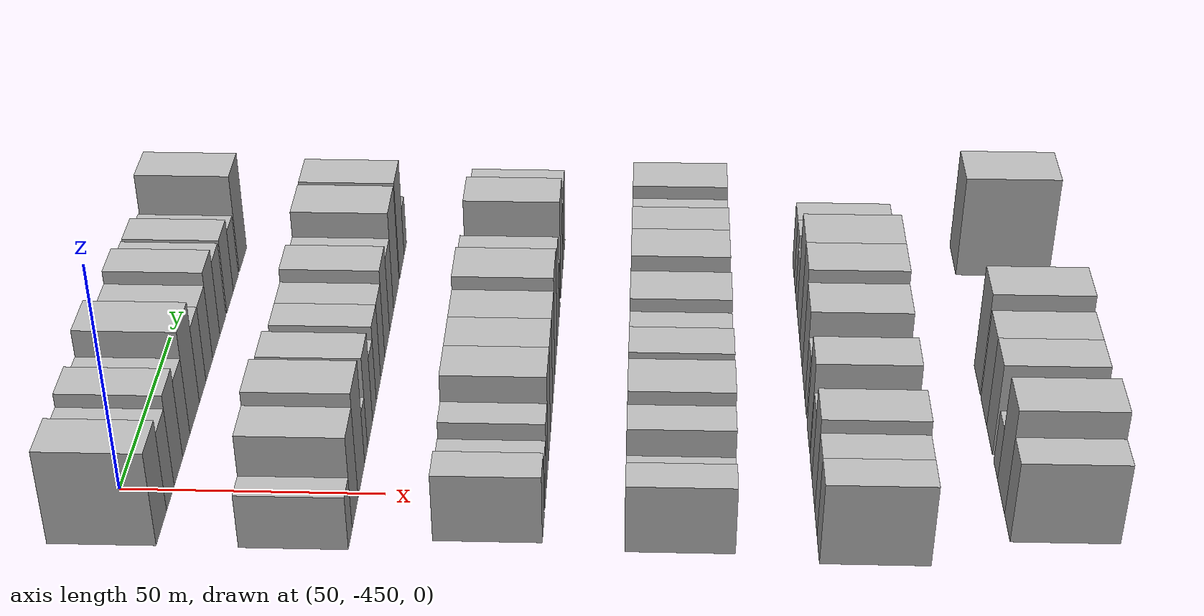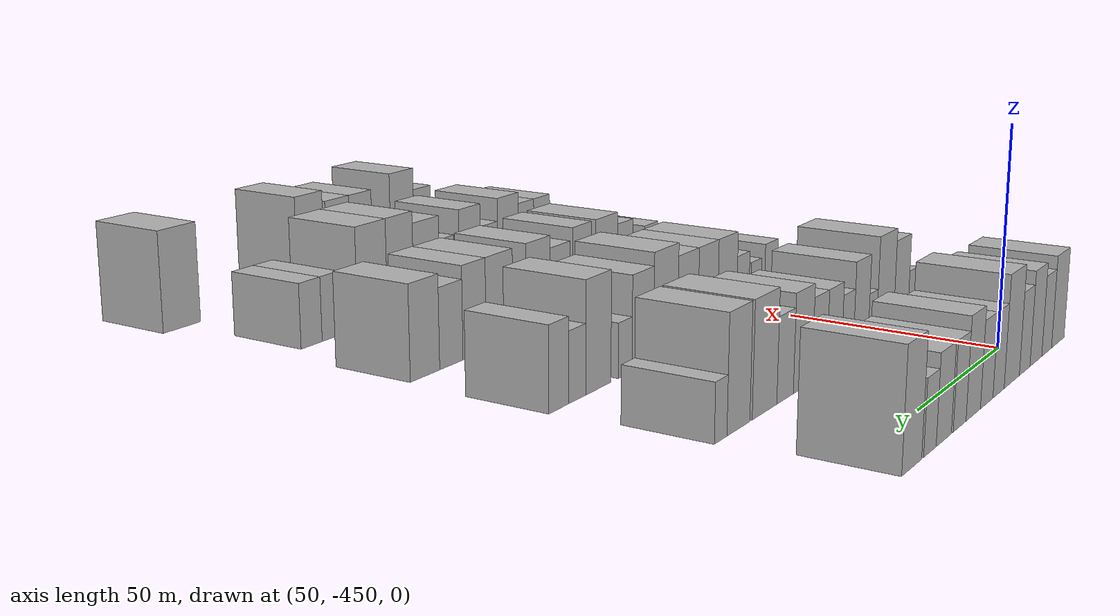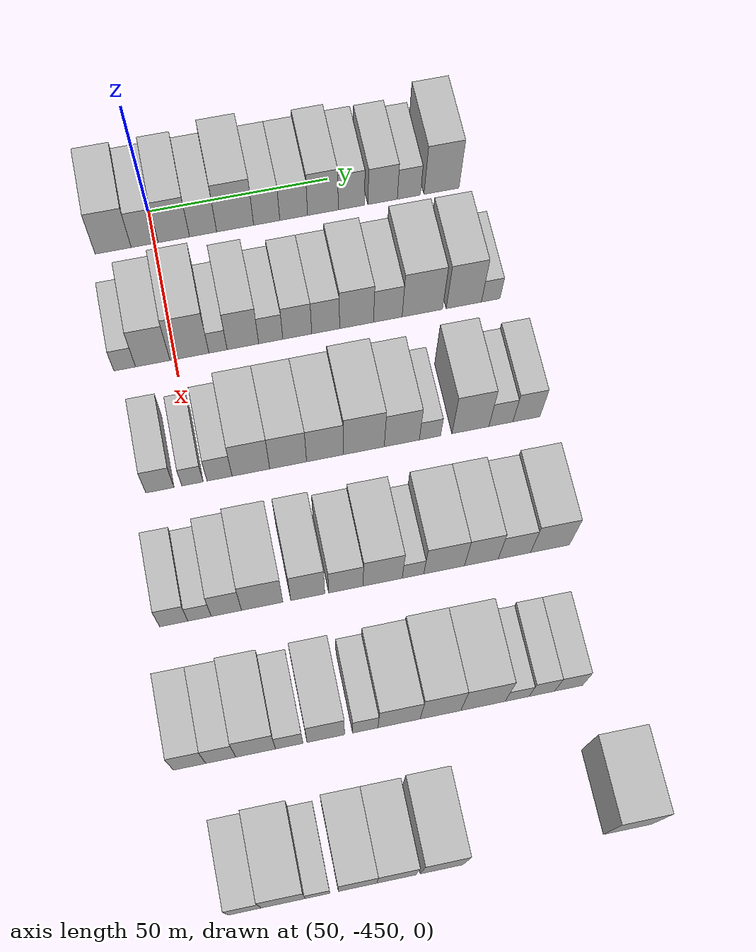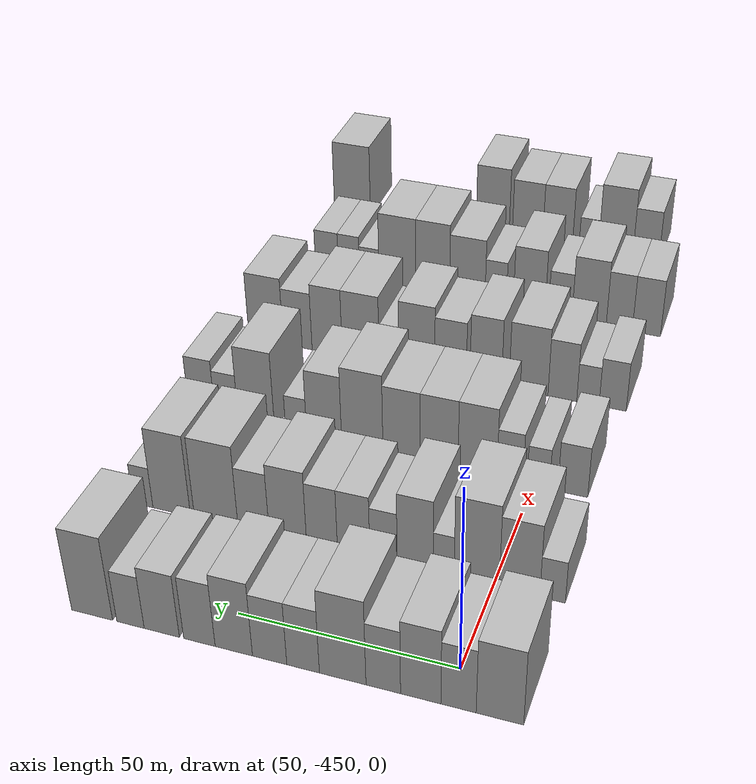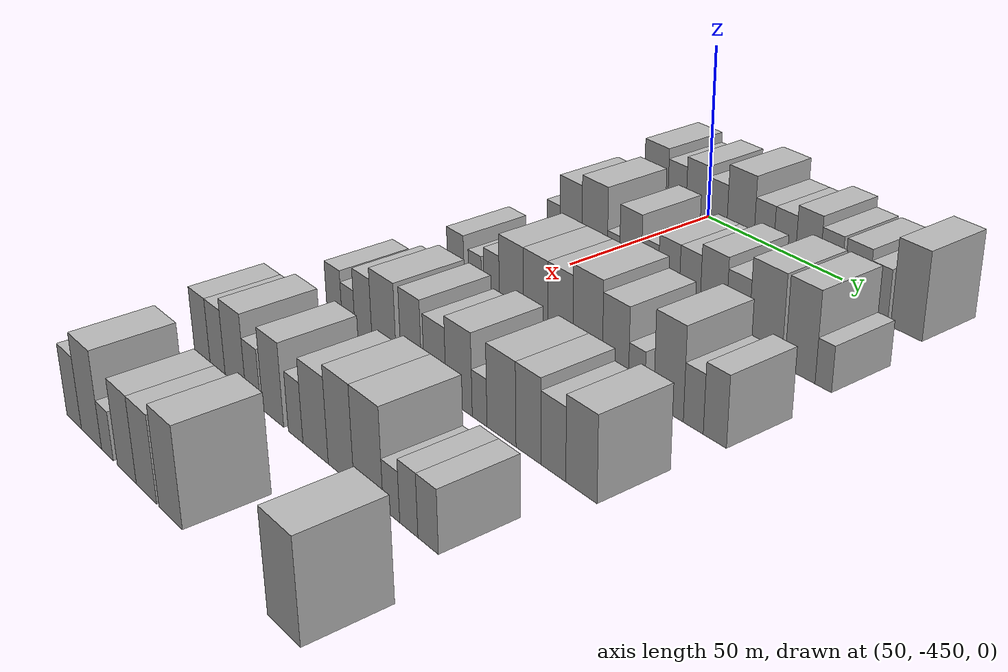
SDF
<sdf version="1.6">
 <world name="default">
  <model name="building_13">
   <static>1</static>
   <pose>50.0000 -461.1967 0 0.000000 0.000000 0.000000</pose>
   <link name="link">
    <pose>0 0 10.50 0 0 0</pose>
    <collision name="collision"><geometry><box><size>20.0000 9.8566 21.0000</size></box></geometry></collision>
    <visual name="visual">
     <cast_shadows>0</cast_shadows>
     <geometry><box><size>20.0000 9.8566 21.0000</size></box></geometry>
     <material>
      <script>
       <uri>model://HANNAS_wall/materials/scripts</uri>
       <uri>model://HANNAS_wall/materials/textures</uri>
       <name>vrc/HANNAS_wall</name>
      </script>
     </material>
    </visual>
   </link>
  </model>
  <model name="building_14">
   <static>1</static>
   <pose>50.0000 -452.5612 0 0.000000 0.000000 0.000000</pose>
   <link name="link">
    <pose>0 0 9.00 0 0 0</pose>
    <collision name="collision"><geometry><box><size>20.0000 7.4144 18.0000</size></box></geometry></collision>
    <visual name="visual">
     <cast_shadows>0</cast_shadows>
     <geometry><box><size>20.0000 7.4144 18.0000</size></box></geometry>
     <material>
      <script>
       <uri>model://HANNAS_wall/materials/scripts</uri>
       <uri>model://HANNAS_wall/materials/textures</uri>
       <name>vrc/HANNAS_wall</name>
      </script>
     </material>
    </visual>
   </link>
  </model>
  <model name="building_15">
   <static>1</static>
   <pose>50.0000 -444.5589 0 0.000000 0.000000 0.000000</pose>
   <link name="link">
    <pose>0 0 10.50 0 0 0</pose>
    <collision name="collision"><geometry><box><size>20.0000 8.5902 21.0000</size></box></geometry></collision>
    <visual name="visual">
     <cast_shadows>0</cast_shadows>
     <geometry><box><size>20.0000 8.5902 21.0000</size></box></geometry>
     <material>
      <script>
       <uri>model://HANNAS_wall/materials/scripts</uri>
       <uri>model://HANNAS_wall/materials/textures</uri>
       <name>vrc/HANNAS_wall</name>
      </script>
     </material>
    </visual>
   </link>
  </model>
  <model name="building_16">
   <static>1</static>
   <pose>50.0000 -436.5324 0 0.000000 0.000000 0.000000</pose>
   <link name="link">
    <pose>0 0 9.00 0 0 0</pose>
    <collision name="collision"><geometry><box><size>20.0000 7.4628 18.0000</size></box></geometry></collision>
    <visual name="visual">
     <cast_shadows>0</cast_shadows>
     <geometry><box><size>20.0000 7.4628 18.0000</size></box></geometry>
     <material>
      <script>
       <uri>model://HANNAS_wall/materials/scripts</uri>
       <uri>model://HANNAS_wall/materials/textures</uri>
       <name>vrc/HANNAS_wall</name>
      </script>
     </material>
    </visual>
   </link>
  </model>
  <model name="building_17">
   <static>1</static>
   <pose>50.0000 -427.6935 0 0.000000 0.000000 0.000000</pose>
   <link name="link">
    <pose>0 0 12.00 0 0 0</pose>
    <collision name="collision"><geometry><box><size>20.0000 10.2148 24.0000</size></box></geometry></collision>
    <visual name="visual">
     <cast_shadows>0</cast_shadows>
     <geometry><box><size>20.0000 10.2148 24.0000</size></box></geometry>
     <material>
      <script>
       <uri>model://HANNAS_wall/materials/scripts</uri>
       <uri>model://HANNAS_wall/materials/textures</uri>
       <name>vrc/HANNAS_wall</name>
      </script>
     </material>
    </visual>
   </link>
  </model>
  <model name="building_18">
   <static>1</static>
   <pose>50.0000 -418.9627 0 0.000000 0.000000 0.000000</pose>
   <link name="link">
    <pose>0 0 9.00 0 0 0</pose>
    <collision name="collision"><geometry><box><size>20.0000 7.2468 18.0000</size></box></geometry></collision>
    <visual name="visual">
     <cast_shadows>0</cast_shadows>
     <geometry><box><size>20.0000 7.2468 18.0000</size></box></geometry>
     <material>
      <script>
       <uri>model://HANNAS_wall/materials/scripts</uri>
       <uri>model://HANNAS_wall/materials/textures</uri>
       <name>vrc/HANNAS_wall</name>
      </script>
     </material>
    </visual>
   </link>
  </model>
  <model name="building_19">
   <static>1</static>
   <pose>50.0000 -411.4793 0 0.000000 0.000000 0.000000</pose>
   <link name="link">
    <pose>0 0 9.00 0 0 0</pose>
    <collision name="collision"><geometry><box><size>20.0000 7.7200 18.0000</size></box></geometry></collision>
    <visual name="visual">
     <cast_shadows>0</cast_shadows>
     <geometry><box><size>20.0000 7.7200 18.0000</size></box></geometry>
     <material>
      <script>
       <uri>model://HANNAS_wall/materials/scripts</uri>
       <uri>model://HANNAS_wall/materials/textures</uri>
       <name>vrc/HANNAS_wall</name>
      </script>
     </material>
    </visual>
   </link>
  </model>
  <model name="building_20">
   <static>1</static>
   <pose>50.0000 -403.3592 0 0.000000 0.000000 0.000000</pose>
   <link name="link">
    <pose>0 0 10.50 0 0 0</pose>
    <collision name="collision"><geometry><box><size>20.0000 8.5203 21.0000</size></box></geometry></collision>
    <visual name="visual">
     <cast_shadows>0</cast_shadows>
     <geometry><box><size>20.0000 8.5203 21.0000</size></box></geometry>
     <material>
      <script>
       <uri>model://HANNAS_wall/materials/scripts</uri>
       <uri>model://HANNAS_wall/materials/textures</uri>
       <name>vrc/HANNAS_wall</name>
      </script>
     </material>
    </visual>
   </link>
  </model>
  <model name="building_21">
   <static>1</static>
   <pose>50.0000 -395.4574 0 0.000000 0.000000 0.000000</pose>
   <link name="link">
    <pose>0 0 9.00 0 0 0</pose>
    <collision name="collision"><geometry><box><size>20.0000 7.2833 18.0000</size></box></geometry></collision>
    <visual name="visual">
     <cast_shadows>0</cast_shadows>
     <geometry><box><size>20.0000 7.2833 18.0000</size></box></geometry>
     <material>
      <script>
       <uri>model://HANNAS_wall/materials/scripts</uri>
       <uri>model://HANNAS_wall/materials/textures</uri>
       <name>vrc/HANNAS_wall</name>
      </script>
     </material>
    </visual>
   </link>
  </model>
  <model name="building_22">
   <static>1</static>
   <pose>50.0000 -386.6926 0 0.000000 0.000000 0.000000</pose>
   <link name="link">
    <pose>0 0 9.00 0 0 0</pose>
    <collision name="collision"><geometry><box><size>20.0000 8.2462 18.0000</size></box></geometry></collision>
    <visual name="visual">
     <cast_shadows>0</cast_shadows>
     <geometry><box><size>20.0000 8.2462 18.0000</size></box></geometry>
     <material>
      <script>
       <uri>model://HANNAS_wall/materials/scripts</uri>
       <uri>model://HANNAS_wall/materials/textures</uri>
       <name>vrc/HANNAS_wall</name>
      </script>
     </material>
    </visual>
   </link>
  </model>
  <model name="building_23">
   <static>1</static>
   <pose>50.0000 -379.3181 0 0.000000 0.000000 0.000000</pose>
   <link name="link">
    <pose>0 0 7.50 0 0 0</pose>
    <collision name="collision"><geometry><box><size>20.0000 6.5028 15.0000</size></box></geometry></collision>
    <visual name="visual">
     <cast_shadows>0</cast_shadows>
     <geometry><box><size>20.0000 6.5028 15.0000</size></box></geometry>
     <material>
      <script>
       <uri>model://HANNAS_wall/materials/scripts</uri>
       <uri>model://HANNAS_wall/materials/textures</uri>
       <name>vrc/HANNAS_wall</name>
      </script>
     </material>
    </visual>
   </link>
  </model>
  <model name="building_24">
   <static>1</static>
   <pose>50.0000 -370.1456 0 0.000000 0.000000 0.000000</pose>
   <link name="link">
    <pose>0 0 12.00 0 0 0</pose>
    <collision name="collision"><geometry><box><size>20.0000 9.8422 24.0000</size></box></geometry></collision>
    <visual name="visual">
     <cast_shadows>0</cast_shadows>
     <geometry><box><size>20.0000 9.8422 24.0000</size></box></geometry>
     <material>
      <script>
       <uri>model://HANNAS_wall/materials/scripts</uri>
       <uri>model://HANNAS_wall/materials/textures</uri>
       <name>vrc/HANNAS_wall</name>
      </script>
     </material>
    </visual>
   </link>
  </model>
  <model name="building_138">
   <static>1</static>
   <pose>85.0000 -463.3644 0 0.000000 0.000000 0.000000</pose>
   <link name="link">
    <pose>0 0 6.00 0 0 0</pose>
    <collision name="collision"><geometry><box><size>20.0000 5.7220 12.0000</size></box></geometry></collision>
    <visual name="visual">
     <cast_shadows>0</cast_shadows>
     <geometry><box><size>20.0000 5.7220 12.0000</size></box></geometry>
     <material>
      <script>
       <uri>model://HANNAS_wall/materials/scripts</uri>
       <uri>model://HANNAS_wall/materials/textures</uri>
       <name>vrc/HANNAS_wall</name>
      </script>
     </material>
    </visual>
   </link>
  </model>
  <model name="building_139">
   <static>1</static>
   <pose>85.0000 -455.9197 0 0.000000 0.000000 0.000000</pose>
   <link name="link">
    <pose>0 0 10.50 0 0 0</pose>
    <collision name="collision"><geometry><box><size>20.0000 9.1674 21.0000</size></box></geometry></collision>
    <visual name="visual">
     <cast_shadows>0</cast_shadows>
     <geometry><box><size>20.0000 9.1674 21.0000</size></box></geometry>
     <material>
      <script>
       <uri>model://HANNAS_wall/materials/scripts</uri>
       <uri>model://HANNAS_wall/materials/textures</uri>
       <name>vrc/HANNAS_wall</name>
      </script>
     </material>
    </visual>
   </link>
  </model>
  <model name="building_140">
   <static>1</static>
   <pose>85.0000 -446.1445 0 0.000000 0.000000 0.000000</pose>
   <link name="link">
    <pose>0 0 12.00 0 0 0</pose>
    <collision name="collision"><geometry><box><size>20.0000 10.3828 24.0000</size></box></geometry></collision>
    <visual name="visual">
     <cast_shadows>0</cast_shadows>
     <geometry><box><size>20.0000 10.3828 24.0000</size></box></geometry>
     <material>
      <script>
       <uri>model://HANNAS_wall/materials/scripts</uri>
       <uri>model://HANNAS_wall/materials/textures</uri>
       <name>vrc/HANNAS_wall</name>
      </script>
     </material>
    </visual>
   </link>
  </model>
  <model name="building_141">
   <static>1</static>
   <pose>85.0000 -438.5213 0 0.000000 0.000000 0.000000</pose>
   <link name="link">
    <pose>0 0 6.00 0 0 0</pose>
    <collision name="collision"><geometry><box><size>20.0000 4.8637 12.0000</size></box></geometry></collision>
    <visual name="visual">
     <cast_shadows>0</cast_shadows>
     <geometry><box><size>20.0000 4.8637 12.0000</size></box></geometry>
     <material>
      <script>
       <uri>model://HANNAS_wall/materials/scripts</uri>
       <uri>model://HANNAS_wall/materials/textures</uri>
       <name>vrc/HANNAS_wall</name>
      </script>
     </material>
    </visual>
   </link>
  </model>
  <model name="building_142">
   <static>1</static>
   <pose>85.0000 -431.8639 0 0.000000 0.000000 0.000000</pose>
   <link name="link">
    <pose>0 0 10.50 0 0 0</pose>
    <collision name="collision"><geometry><box><size>20.0000 8.4509 21.0000</size></box></geometry></collision>
    <visual name="visual">
     <cast_shadows>0</cast_shadows>
     <geometry><box><size>20.0000 8.4509 21.0000</size></box></geometry>
     <material>
      <script>
       <uri>model://HANNAS_wall/materials/scripts</uri>
       <uri>model://HANNAS_wall/materials/textures</uri>
       <name>vrc/HANNAS_wall</name>
      </script>
     </material>
    </visual>
   </link>
  </model>
  <model name="building_143">
   <static>1</static>
   <pose>85.0000 -424.4009 0 0.000000 0.000000 0.000000</pose>
   <link name="link">
    <pose>0 0 7.50 0 0 0</pose>
    <collision name="collision"><geometry><box><size>20.0000 6.4751 15.0000</size></box></geometry></collision>
    <visual name="visual">
     <cast_shadows>0</cast_shadows>
     <geometry><box><size>20.0000 6.4751 15.0000</size></box></geometry>
     <material>
      <script>
       <uri>model://HANNAS_wall/materials/scripts</uri>
       <uri>model://HANNAS_wall/materials/textures</uri>
       <name>vrc/HANNAS_wall</name>
      </script>
     </material>
    </visual>
   </link>
  </model>
  <model name="building_144">
   <static>1</static>
   <pose>85.0000 -417.2740 0 0.000000 0.000000 0.000000</pose>
   <link name="link">
    <pose>0 0 9.00 0 0 0</pose>
    <collision name="collision"><geometry><box><size>20.0000 7.7787 18.0000</size></box></geometry></collision>
    <visual name="visual">
     <cast_shadows>0</cast_shadows>
     <geometry><box><size>20.0000 7.7787 18.0000</size></box></geometry>
     <material>
      <script>
       <uri>model://HANNAS_wall/materials/scripts</uri>
       <uri>model://HANNAS_wall/materials/textures</uri>
       <name>vrc/HANNAS_wall</name>
      </script>
     </material>
    </visual>
   </link>
  </model>
  <model name="building_145">
   <static>1</static>
   <pose>85.0000 -409.6273 0 0.000000 0.000000 0.000000</pose>
   <link name="link">
    <pose>0 0 9.00 0 0 0</pose>
    <collision name="collision"><geometry><box><size>20.0000 7.5147 18.0000</size></box></geometry></collision>
    <visual name="visual">
     <cast_shadows>0</cast_shadows>
     <geometry><box><size>20.0000 7.5147 18.0000</size></box></geometry>
     <material>
      <script>
       <uri>model://HANNAS_wall/materials/scripts</uri>
       <uri>model://HANNAS_wall/materials/textures</uri>
       <name>vrc/HANNAS_wall</name>
      </script>
     </material>
    </visual>
   </link>
  </model>
  <model name="building_146">
   <static>1</static>
   <pose>85.0000 -401.2815 0 0.000000 0.000000 0.000000</pose>
   <link name="link">
    <pose>0 0 10.50 0 0 0</pose>
    <collision name="collision"><geometry><box><size>20.0000 9.1771 21.0000</size></box></geometry></collision>
    <visual name="visual">
     <cast_shadows>0</cast_shadows>
     <geometry><box><size>20.0000 9.1771 21.0000</size></box></geometry>
     <material>
      <script>
       <uri>model://HANNAS_wall/materials/scripts</uri>
       <uri>model://HANNAS_wall/materials/textures</uri>
       <name>vrc/HANNAS_wall</name>
      </script>
     </material>
    </visual>
   </link>
  </model>
  <model name="building_147">
   <static>1</static>
   <pose>85.0000 -392.8049 0 0.000000 0.000000 0.000000</pose>
   <link name="link">
    <pose>0 0 9.00 0 0 0</pose>
    <collision name="collision"><geometry><box><size>20.0000 7.7760 18.0000</size></box></geometry></collision>
    <visual name="visual">
     <cast_shadows>0</cast_shadows>
     <geometry><box><size>20.0000 7.7760 18.0000</size></box></geometry>
     <material>
      <script>
       <uri>model://HANNAS_wall/materials/scripts</uri>
       <uri>model://HANNAS_wall/materials/textures</uri>
       <name>vrc/HANNAS_wall</name>
      </script>
     </material>
    </visual>
   </link>
  </model>
  <model name="building_148">
   <static>1</static>
   <pose>85.0000 -383.4002 0 0.000000 0.000000 0.000000</pose>
   <link name="link">
    <pose>0 0 12.00 0 0 0</pose>
    <collision name="collision"><geometry><box><size>20.0000 11.0335 24.0000</size></box></geometry></collision>
    <visual name="visual">
     <cast_shadows>0</cast_shadows>
     <geometry><box><size>20.0000 11.0335 24.0000</size></box></geometry>
     <material>
      <script>
       <uri>model://HANNAS_wall/materials/scripts</uri>
       <uri>model://HANNAS_wall/materials/textures</uri>
       <name>vrc/HANNAS_wall</name>
      </script>
     </material>
    </visual>
   </link>
  </model>
  <model name="building_149">
   <static>1</static>
   <pose>85.0000 -372.0579 0 0.000000 0.000000 0.000000</pose>
   <link name="link">
    <pose>0 0 12.00 0 0 0</pose>
    <collision name="collision"><geometry><box><size>20.0000 9.6511 24.0000</size></box></geometry></collision>
    <visual name="visual">
     <cast_shadows>0</cast_shadows>
     <geometry><box><size>20.0000 9.6511 24.0000</size></box></geometry>
     <material>
      <script>
       <uri>model://HANNAS_wall/materials/scripts</uri>
       <uri>model://HANNAS_wall/materials/textures</uri>
       <name>vrc/HANNAS_wall</name>
      </script>
     </material>
    </visual>
   </link>
  </model>
  <model name="building_150">
   <static>1</static>
   <pose>85.0000 -364.6880 0 0.000000 0.000000 0.000000</pose>
   <link name="link">
    <pose>0 0 6.00 0 0 0</pose>
    <collision name="collision"><geometry><box><size>20.0000 5.0887 12.0000</size></box></geometry></collision>
    <visual name="visual">
     <cast_shadows>0</cast_shadows>
     <geometry><box><size>20.0000 5.0887 12.0000</size></box></geometry>
     <material>
      <script>
       <uri>model://HANNAS_wall/materials/scripts</uri>
       <uri>model://HANNAS_wall/materials/textures</uri>
       <name>vrc/HANNAS_wall</name>
      </script>
     </material>
    </visual>
   </link>
  </model>
  <model name="building_270">
   <static>1</static>
   <pose>120.0000 -459.6366 0 0.000000 0.000000 0.000000</pose>
   <link name="link">
    <pose>0 0 7.50 0 0 0</pose>
    <collision name="collision"><geometry><box><size>20.0000 7.2560 15.0000</size></box></geometry></collision>
    <visual name="visual">
     <cast_shadows>0</cast_shadows>
     <geometry><box><size>20.0000 7.2560 15.0000</size></box></geometry>
     <material>
      <script>
       <uri>model://HANNAS_wall/materials/scripts</uri>
       <uri>model://HANNAS_wall/materials/textures</uri>
       <name>vrc/HANNAS_wall</name>
      </script>
     </material>
    </visual>
   </link>
  </model>
  <model name="building_271">
   <static>1</static>
   <pose>120.0000 -451.2441 0 0.000000 0.000000 0.000000</pose>
   <link name="link">
    <pose>0 0 6.00 0 0 0</pose>
    <collision name="collision"><geometry><box><size>20.0000 5.5291 12.0000</size></box></geometry></collision>
    <visual name="visual">
     <cast_shadows>0</cast_shadows>
     <geometry><box><size>20.0000 5.5291 12.0000</size></box></geometry>
     <material>
      <script>
       <uri>model://HANNAS_wall/materials/scripts</uri>
       <uri>model://HANNAS_wall/materials/textures</uri>
       <name>vrc/HANNAS_wall</name>
      </script>
     </material>
    </visual>
   </link>
  </model>
  <model name="building_272">
   <static>1</static>
   <pose>120.0000 -444.2374 0 0.000000 0.000000 0.000000</pose>
   <link name="link">
    <pose>0 0 7.50 0 0 0</pose>
    <collision name="collision"><geometry><box><size>20.0000 6.4841 15.0000</size></box></geometry></collision>
    <visual name="visual">
     <cast_shadows>0</cast_shadows>
     <geometry><box><size>20.0000 6.4841 15.0000</size></box></geometry>
     <material>
      <script>
       <uri>model://HANNAS_wall/materials/scripts</uri>
       <uri>model://HANNAS_wall/materials/textures</uri>
       <name>vrc/HANNAS_wall</name>
      </script>
     </material>
    </visual>
   </link>
  </model>
  <model name="building_273">
   <static>1</static>
   <pose>120.0000 -436.1201 0 0.000000 0.000000 0.000000</pose>
   <link name="link">
    <pose>0 0 10.50 0 0 0</pose>
    <collision name="collision"><geometry><box><size>20.0000 9.7506 21.0000</size></box></geometry></collision>
    <visual name="visual">
     <cast_shadows>0</cast_shadows>
     <geometry><box><size>20.0000 9.7506 21.0000</size></box></geometry>
     <material>
      <script>
       <uri>model://HANNAS_wall/materials/scripts</uri>
       <uri>model://HANNAS_wall/materials/textures</uri>
       <name>vrc/HANNAS_wall</name>
      </script>
     </material>
    </visual>
   </link>
  </model>
  <model name="building_274">
   <static>1</static>
   <pose>120.0000 -426.4396 0 0.000000 0.000000 0.000000</pose>
   <link name="link">
    <pose>0 0 10.50 0 0 0</pose>
    <collision name="collision"><geometry><box><size>20.0000 9.6103 21.0000</size></box></geometry></collision>
    <visual name="visual">
     <cast_shadows>0</cast_shadows>
     <geometry><box><size>20.0000 9.6103 21.0000</size></box></geometry>
     <material>
      <script>
       <uri>model://HANNAS_wall/materials/scripts</uri>
       <uri>model://HANNAS_wall/materials/textures</uri>
       <name>vrc/HANNAS_wall</name>
      </script>
     </material>
    </visual>
   </link>
  </model>
  <model name="building_275">
   <static>1</static>
   <pose>120.0000 -416.8525 0 0.000000 0.000000 0.000000</pose>
   <link name="link">
    <pose>0 0 10.50 0 0 0</pose>
    <collision name="collision"><geometry><box><size>20.0000 9.5639 21.0000</size></box></geometry></collision>
    <visual name="visual">
     <cast_shadows>0</cast_shadows>
     <geometry><box><size>20.0000 9.5639 21.0000</size></box></geometry>
     <material>
      <script>
       <uri>model://HANNAS_wall/materials/scripts</uri>
       <uri>model://HANNAS_wall/materials/textures</uri>
       <name>vrc/HANNAS_wall</name>
      </script>
     </material>
    </visual>
   </link>
  </model>
  <model name="building_276">
   <static>1</static>
   <pose>120.0000 -406.6873 0 0.000000 0.000000 0.000000</pose>
   <link name="link">
    <pose>0 0 12.00 0 0 0</pose>
    <collision name="collision"><geometry><box><size>20.0000 10.7666 24.0000</size></box></geometry></collision>
    <visual name="visual">
     <cast_shadows>0</cast_shadows>
     <geometry><box><size>20.0000 10.7666 24.0000</size></box></geometry>
     <material>
      <script>
       <uri>model://HANNAS_wall/materials/scripts</uri>
       <uri>model://HANNAS_wall/materials/textures</uri>
       <name>vrc/HANNAS_wall</name>
      </script>
     </material>
    </visual>
   </link>
  </model>
  <model name="building_277">
   <static>1</static>
   <pose>120.0000 -396.6855 0 0.000000 0.000000 0.000000</pose>
   <link name="link">
    <pose>0 0 10.50 0 0 0</pose>
    <collision name="collision"><geometry><box><size>20.0000 9.2370 21.0000</size></box></geometry></collision>
    <visual name="visual">
     <cast_shadows>0</cast_shadows>
     <geometry><box><size>20.0000 9.2370 21.0000</size></box></geometry>
     <material>
      <script>
       <uri>model://HANNAS_wall/materials/scripts</uri>
       <uri>model://HANNAS_wall/materials/textures</uri>
       <name>vrc/HANNAS_wall</name>
      </script>
     </material>
    </visual>
   </link>
  </model>
  <model name="building_278">
   <static>1</static>
   <pose>120.0000 -389.2551 0 0.000000 0.000000 0.000000</pose>
   <link name="link">
    <pose>0 0 6.00 0 0 0</pose>
    <collision name="collision"><geometry><box><size>20.0000 5.6236 12.0000</size></box></geometry></collision>
    <visual name="visual">
     <cast_shadows>0</cast_shadows>
     <geometry><box><size>20.0000 5.6236 12.0000</size></box></geometry>
     <material>
      <script>
       <uri>model://HANNAS_wall/materials/scripts</uri>
       <uri>model://HANNAS_wall/materials/textures</uri>
       <name>vrc/HANNAS_wall</name>
      </script>
     </material>
    </visual>
   </link>
  </model>
  <model name="building_279">
   <static>1</static>
   <pose>120.0000 -378.5336 0 0.000000 0.000000 0.000000</pose>
   <link name="link">
    <pose>0 0 12.00 0 0 0</pose>
    <collision name="collision"><geometry><box><size>20.0000 9.8194 24.0000</size></box></geometry></collision>
    <visual name="visual">
     <cast_shadows>0</cast_shadows>
     <geometry><box><size>20.0000 9.8194 24.0000</size></box></geometry>
     <material>
      <script>
       <uri>model://HANNAS_wall/materials/scripts</uri>
       <uri>model://HANNAS_wall/materials/textures</uri>
       <name>vrc/HANNAS_wall</name>
      </script>
     </material>
    </visual>
   </link>
  </model>
  <model name="building_280">
   <static>1</static>
   <pose>120.0000 -370.4428 0 0.000000 0.000000 0.000000</pose>
   <link name="link">
    <pose>0 0 7.50 0 0 0</pose>
    <collision name="collision"><geometry><box><size>20.0000 6.3622 15.0000</size></box></geometry></collision>
    <visual name="visual">
     <cast_shadows>0</cast_shadows>
     <geometry><box><size>20.0000 6.3622 15.0000</size></box></geometry>
     <material>
      <script>
       <uri>model://HANNAS_wall/materials/scripts</uri>
       <uri>model://HANNAS_wall/materials/textures</uri>
       <name>vrc/HANNAS_wall</name>
      </script>
     </material>
    </visual>
   </link>
  </model>
  <model name="building_281">
   <static>1</static>
   <pose>120.0000 -363.6497 0 0.000000 0.000000 0.000000</pose>
   <link name="link">
    <pose>0 0 9.00 0 0 0</pose>
    <collision name="collision"><geometry><box><size>20.0000 7.2240 18.0000</size></box></geometry></collision>
    <visual name="visual">
     <cast_shadows>0</cast_shadows>
     <geometry><box><size>20.0000 7.2240 18.0000</size></box></geometry>
     <material>
      <script>
       <uri>model://HANNAS_wall/materials/scripts</uri>
       <uri>model://HANNAS_wall/materials/textures</uri>
       <name>vrc/HANNAS_wall</name>
      </script>
     </material>
    </visual>
   </link>
  </model>
  <model name="building_394">
   <static>1</static>
   <pose>155.0000 -461.7981 0 0.000000 0.000000 0.000000</pose>
   <link name="link">
    <pose>0 0 7.50 0 0 0</pose>
    <collision name="collision"><geometry><box><size>20.0000 7.0312 15.0000</size></box></geometry></collision>
    <visual name="visual">
     <cast_shadows>0</cast_shadows>
     <geometry><box><size>20.0000 7.0312 15.0000</size></box></geometry>
     <material>
      <script>
       <uri>model://HANNAS_wall/materials/scripts</uri>
       <uri>model://HANNAS_wall/materials/textures</uri>
       <name>vrc/HANNAS_wall</name>
      </script>
     </material>
    </visual>
   </link>
  </model>
  <model name="building_395">
   <static>1</static>
   <pose>155.0000 -455.3655 0 0.000000 0.000000 0.000000</pose>
   <link name="link">
    <pose>0 0 6.00 0 0 0</pose>
    <collision name="collision"><geometry><box><size>20.0000 5.8339 12.0000</size></box></geometry></collision>
    <visual name="visual">
     <cast_shadows>0</cast_shadows>
     <geometry><box><size>20.0000 5.8339 12.0000</size></box></geometry>
     <material>
      <script>
       <uri>model://HANNAS_wall/materials/scripts</uri>
       <uri>model://HANNAS_wall/materials/textures</uri>
       <name>vrc/HANNAS_wall</name>
      </script>
     </material>
    </visual>
   </link>
  </model>
  <model name="building_396">
   <static>1</static>
   <pose>155.0000 -448.6544 0 0.000000 0.000000 0.000000</pose>
   <link name="link">
    <pose>0 0 9.00 0 0 0</pose>
    <collision name="collision"><geometry><box><size>20.0000 7.5885 18.0000</size></box></geometry></collision>
    <visual name="visual">
     <cast_shadows>0</cast_shadows>
     <geometry><box><size>20.0000 7.5885 18.0000</size></box></geometry>
     <material>
      <script>
       <uri>model://HANNAS_wall/materials/scripts</uri>
       <uri>model://HANNAS_wall/materials/textures</uri>
       <name>vrc/HANNAS_wall</name>
      </script>
     </material>
    </visual>
   </link>
  </model>
  <model name="building_397">
   <static>1</static>
   <pose>155.0000 -439.6676 0 0.000000 0.000000 0.000000</pose>
   <link name="link">
    <pose>0 0 10.50 0 0 0</pose>
    <collision name="collision"><geometry><box><size>20.0000 10.3851 21.0000</size></box></geometry></collision>
    <visual name="visual">
     <cast_shadows>0</cast_shadows>
     <geometry><box><size>20.0000 10.3851 21.0000</size></box></geometry>
     <material>
      <script>
       <uri>model://HANNAS_wall/materials/scripts</uri>
       <uri>model://HANNAS_wall/materials/textures</uri>
       <name>vrc/HANNAS_wall</name>
      </script>
     </material>
    </visual>
   </link>
  </model>
  <model name="building_398">
   <static>1</static>
   <pose>155.0000 -428.1927 0 0.000000 0.000000 0.000000</pose>
   <link name="link">
    <pose>0 0 10.50 0 0 0</pose>
    <collision name="collision"><geometry><box><size>20.0000 8.5646 21.0000</size></box></geometry></collision>
    <visual name="visual">
     <cast_shadows>0</cast_shadows>
     <geometry><box><size>20.0000 8.5646 21.0000</size></box></geometry>
     <material>
      <script>
       <uri>model://HANNAS_wall/materials/scripts</uri>
       <uri>model://HANNAS_wall/materials/textures</uri>
       <name>vrc/HANNAS_wall</name>
      </script>
     </material>
    </visual>
   </link>
  </model>
  <model name="building_399">
   <static>1</static>
   <pose>155.0000 -418.5856 0 0.000000 0.000000 0.000000</pose>
   <link name="link">
    <pose>0 0 9.00 0 0 0</pose>
    <collision name="collision"><geometry><box><size>20.0000 8.6497 18.0000</size></box></geometry></collision>
    <visual name="visual">
     <cast_shadows>0</cast_shadows>
     <geometry><box><size>20.0000 8.6497 18.0000</size></box></geometry>
     <material>
      <script>
       <uri>model://HANNAS_wall/materials/scripts</uri>
       <uri>model://HANNAS_wall/materials/textures</uri>
       <name>vrc/HANNAS_wall</name>
      </script>
     </material>
    </visual>
   </link>
  </model>
  <model name="building_400">
   <static>1</static>
   <pose>155.0000 -409.2649 0 0.000000 0.000000 0.000000</pose>
   <link name="link">
    <pose>0 0 10.50 0 0 0</pose>
    <collision name="collision"><geometry><box><size>20.0000 9.9916 21.0000</size></box></geometry></collision>
    <visual name="visual">
     <cast_shadows>0</cast_shadows>
     <geometry><box><size>20.0000 9.9916 21.0000</size></box></geometry>
     <material>
      <script>
       <uri>model://HANNAS_wall/materials/scripts</uri>
       <uri>model://HANNAS_wall/materials/textures</uri>
       <name>vrc/HANNAS_wall</name>
      </script>
     </material>
    </visual>
   </link>
  </model>
  <model name="building_401">
   <static>1</static>
   <pose>155.0000 -401.5192 0 0.000000 0.000000 0.000000</pose>
   <link name="link">
    <pose>0 0 6.00 0 0 0</pose>
    <collision name="collision"><geometry><box><size>20.0000 5.4997 12.0000</size></box></geometry></collision>
    <visual name="visual">
     <cast_shadows>0</cast_shadows>
     <geometry><box><size>20.0000 5.4997 12.0000</size></box></geometry>
     <material>
      <script>
       <uri>model://HANNAS_wall/materials/scripts</uri>
       <uri>model://HANNAS_wall/materials/textures</uri>
       <name>vrc/HANNAS_wall</name>
      </script>
     </material>
    </visual>
   </link>
  </model>
  <model name="building_402">
   <static>1</static>
   <pose>155.0000 -393.5481 0 0.000000 0.000000 0.000000</pose>
   <link name="link">
    <pose>0 0 10.50 0 0 0</pose>
    <collision name="collision"><geometry><box><size>20.0000 10.4426 21.0000</size></box></geometry></collision>
    <visual name="visual">
     <cast_shadows>0</cast_shadows>
     <geometry><box><size>20.0000 10.4426 21.0000</size></box></geometry>
     <material>
      <script>
       <uri>model://HANNAS_wall/materials/scripts</uri>
       <uri>model://HANNAS_wall/materials/textures</uri>
       <name>vrc/HANNAS_wall</name>
      </script>
     </material>
    </visual>
   </link>
  </model>
  <model name="building_403">
   <static>1</static>
   <pose>155.0000 -384.0100 0 0.000000 0.000000 0.000000</pose>
   <link name="link">
    <pose>0 0 10.50 0 0 0</pose>
    <collision name="collision"><geometry><box><size>20.0000 8.6336 21.0000</size></box></geometry></collision>
    <visual name="visual">
     <cast_shadows>0</cast_shadows>
     <geometry><box><size>20.0000 8.6336 21.0000</size></box></geometry>
     <material>
      <script>
       <uri>model://HANNAS_wall/materials/scripts</uri>
       <uri>model://HANNAS_wall/materials/textures</uri>
       <name>vrc/HANNAS_wall</name>
      </script>
     </material>
    </visual>
   </link>
  </model>
  <model name="building_404">
   <static>1</static>
   <pose>155.0000 -375.5225 0 0.000000 0.000000 0.000000</pose>
   <link name="link">
    <pose>0 0 9.00 0 0 0</pose>
    <collision name="collision"><geometry><box><size>20.0000 8.3415 18.0000</size></box></geometry></collision>
    <visual name="visual">
     <cast_shadows>0</cast_shadows>
     <geometry><box><size>20.0000 8.3415 18.0000</size></box></geometry>
     <material>
      <script>
       <uri>model://HANNAS_wall/materials/scripts</uri>
       <uri>model://HANNAS_wall/materials/textures</uri>
       <name>vrc/HANNAS_wall</name>
      </script>
     </material>
    </visual>
   </link>
  </model>
  <model name="building_405">
   <static>1</static>
   <pose>155.0000 -366.3197 0 0.000000 0.000000 0.000000</pose>
   <link name="link">
    <pose>0 0 10.50 0 0 0</pose>
    <collision name="collision"><geometry><box><size>20.0000 10.0641 21.0000</size></box></geometry></collision>
    <visual name="visual">
     <cast_shadows>0</cast_shadows>
     <geometry><box><size>20.0000 10.0641 21.0000</size></box></geometry>
     <material>
      <script>
       <uri>model://HANNAS_wall/materials/scripts</uri>
       <uri>model://HANNAS_wall/materials/textures</uri>
       <name>vrc/HANNAS_wall</name>
      </script>
     </material>
    </visual>
   </link>
  </model>
  <model name="building_519">
   <static>1</static>
   <pose>190.0000 -463.7201 0 0.000000 0.000000 0.000000</pose>
   <link name="link">
    <pose>0 0 9.00 0 0 0</pose>
    <collision name="collision"><geometry><box><size>20.0000 7.7649 18.0000</size></box></geometry></collision>
    <visual name="visual">
     <cast_shadows>0</cast_shadows>
     <geometry><box><size>20.0000 7.7649 18.0000</size></box></geometry>
     <material>
      <script>
       <uri>model://HANNAS_wall/materials/scripts</uri>
       <uri>model://HANNAS_wall/materials/textures</uri>
       <name>vrc/HANNAS_wall</name>
      </script>
     </material>
    </visual>
   </link>
  </model>
  <model name="building_520">
   <static>1</static>
   <pose>190.0000 -456.1910 0 0.000000 0.000000 0.000000</pose>
   <link name="link">
    <pose>0 0 9.00 0 0 0</pose>
    <collision name="collision"><geometry><box><size>20.0000 7.2932 18.0000</size></box></geometry></collision>
    <visual name="visual">
     <cast_shadows>0</cast_shadows>
     <geometry><box><size>20.0000 7.2932 18.0000</size></box></geometry>
     <material>
      <script>
       <uri>model://HANNAS_wall/materials/scripts</uri>
       <uri>model://HANNAS_wall/materials/textures</uri>
       <name>vrc/HANNAS_wall</name>
      </script>
     </material>
    </visual>
   </link>
  </model>
  <model name="building_521">
   <static>1</static>
   <pose>190.0000 -447.7251 0 0.000000 0.000000 0.000000</pose>
   <link name="link">
    <pose>0 0 10.50 0 0 0</pose>
    <collision name="collision"><geometry><box><size>20.0000 9.6387 21.0000</size></box></geometry></collision>
    <visual name="visual">
     <cast_shadows>0</cast_shadows>
     <geometry><box><size>20.0000 9.6387 21.0000</size></box></geometry>
     <material>
      <script>
       <uri>model://HANNAS_wall/materials/scripts</uri>
       <uri>model://HANNAS_wall/materials/textures</uri>
       <name>vrc/HANNAS_wall</name>
      </script>
     </material>
    </visual>
   </link>
  </model>
  <model name="building_522">
   <static>1</static>
   <pose>190.0000 -439.5773 0 0.000000 0.000000 0.000000</pose>
   <link name="link">
    <pose>0 0 7.50 0 0 0</pose>
    <collision name="collision"><geometry><box><size>20.0000 6.6569 15.0000</size></box></geometry></collision>
    <visual name="visual">
     <cast_shadows>0</cast_shadows>
     <geometry><box><size>20.0000 6.6569 15.0000</size></box></geometry>
     <material>
      <script>
       <uri>model://HANNAS_wall/materials/scripts</uri>
       <uri>model://HANNAS_wall/materials/textures</uri>
       <name>vrc/HANNAS_wall</name>
      </script>
     </material>
    </visual>
   </link>
  </model>
  <model name="building_523">
   <static>1</static>
   <pose>190.0000 -430.6900 0 0.000000 0.000000 0.000000</pose>
   <link name="link">
    <pose>0 0 10.50 0 0 0</pose>
    <collision name="collision"><geometry><box><size>20.0000 9.1177 21.0000</size></box></geometry></collision>
    <visual name="visual">
     <cast_shadows>0</cast_shadows>
     <geometry><box><size>20.0000 9.1177 21.0000</size></box></geometry>
     <material>
      <script>
       <uri>model://HANNAS_wall/materials/scripts</uri>
       <uri>model://HANNAS_wall/materials/textures</uri>
       <name>vrc/HANNAS_wall</name>
      </script>
     </material>
    </visual>
   </link>
  </model>
  <model name="building_524">
   <static>1</static>
   <pose>190.0000 -421.0310 0 0.000000 0.000000 0.000000</pose>
   <link name="link">
    <pose>0 0 7.50 0 0 0</pose>
    <collision name="collision"><geometry><box><size>20.0000 6.2001 15.0000</size></box></geometry></collision>
    <visual name="visual">
     <cast_shadows>0</cast_shadows>
     <geometry><box><size>20.0000 6.2001 15.0000</size></box></geometry>
     <material>
      <script>
       <uri>model://HANNAS_wall/materials/scripts</uri>
       <uri>model://HANNAS_wall/materials/textures</uri>
       <name>vrc/HANNAS_wall</name>
      </script>
     </material>
    </visual>
   </link>
  </model>
  <model name="building_525">
   <static>1</static>
   <pose>190.0000 -412.7400 0 0.000000 0.000000 0.000000</pose>
   <link name="link">
    <pose>0 0 10.50 0 0 0</pose>
    <collision name="collision"><geometry><box><size>20.0000 10.3819 21.0000</size></box></geometry></collision>
    <visual name="visual">
     <cast_shadows>0</cast_shadows>
     <geometry><box><size>20.0000 10.3819 21.0000</size></box></geometry>
     <material>
      <script>
       <uri>model://HANNAS_wall/materials/scripts</uri>
       <uri>model://HANNAS_wall/materials/textures</uri>
       <name>vrc/HANNAS_wall</name>
      </script>
     </material>
    </visual>
   </link>
  </model>
  <model name="building_526">
   <static>1</static>
   <pose>190.0000 -402.5072 0 0.000000 0.000000 0.000000</pose>
   <link name="link">
    <pose>0 0 12.00 0 0 0</pose>
    <collision name="collision"><geometry><box><size>20.0000 10.0837 24.0000</size></box></geometry></collision>
    <visual name="visual">
     <cast_shadows>0</cast_shadows>
     <geometry><box><size>20.0000 10.0837 24.0000</size></box></geometry>
     <material>
      <script>
       <uri>model://HANNAS_wall/materials/scripts</uri>
       <uri>model://HANNAS_wall/materials/textures</uri>
       <name>vrc/HANNAS_wall</name>
      </script>
     </material>
    </visual>
   </link>
  </model>
  <model name="building_527">
   <static>1</static>
   <pose>190.0000 -391.9709 0 0.000000 0.000000 0.000000</pose>
   <link name="link">
    <pose>0 0 12.00 0 0 0</pose>
    <collision name="collision"><geometry><box><size>20.0000 10.9888 24.0000</size></box></geometry></collision>
    <visual name="visual">
     <cast_shadows>0</cast_shadows>
     <geometry><box><size>20.0000 10.9888 24.0000</size></box></geometry>
     <material>
      <script>
       <uri>model://HANNAS_wall/materials/scripts</uri>
       <uri>model://HANNAS_wall/materials/textures</uri>
       <name>vrc/HANNAS_wall</name>
      </script>
     </material>
    </visual>
   </link>
  </model>
  <model name="building_528">
   <static>1</static>
   <pose>190.0000 -383.4885 0 0.000000 0.000000 0.000000</pose>
   <link name="link">
    <pose>0 0 6.00 0 0 0</pose>
    <collision name="collision"><geometry><box><size>20.0000 5.9760 12.0000</size></box></geometry></collision>
    <visual name="visual">
     <cast_shadows>0</cast_shadows>
     <geometry><box><size>20.0000 5.9760 12.0000</size></box></geometry>
     <material>
      <script>
       <uri>model://HANNAS_wall/materials/scripts</uri>
       <uri>model://HANNAS_wall/materials/textures</uri>
       <name>vrc/HANNAS_wall</name>
      </script>
     </material>
    </visual>
   </link>
  </model>
  <model name="building_529">
   <static>1</static>
   <pose>190.0000 -377.3010 0 0.000000 0.000000 0.000000</pose>
   <link name="link">
    <pose>0 0 7.50 0 0 0</pose>
    <collision name="collision"><geometry><box><size>20.0000 6.3991 15.0000</size></box></geometry></collision>
    <visual name="visual">
     <cast_shadows>0</cast_shadows>
     <geometry><box><size>20.0000 6.3991 15.0000</size></box></geometry>
     <material>
      <script>
       <uri>model://HANNAS_wall/materials/scripts</uri>
       <uri>model://HANNAS_wall/materials/textures</uri>
       <name>vrc/HANNAS_wall</name>
      </script>
     </material>
    </visual>
   </link>
  </model>
  <model name="building_530">
   <static>1</static>
   <pose>190.0000 -370.5979 0 0.000000 0.000000 0.000000</pose>
   <link name="link">
    <pose>0 0 7.50 0 0 0</pose>
    <collision name="collision"><geometry><box><size>20.0000 7.0071 15.0000</size></box></geometry></collision>
    <visual name="visual">
     <cast_shadows>0</cast_shadows>
     <geometry><box><size>20.0000 7.0071 15.0000</size></box></geometry>
     <material>
      <script>
       <uri>model://HANNAS_wall/materials/scripts</uri>
       <uri>model://HANNAS_wall/materials/textures</uri>
       <name>vrc/HANNAS_wall</name>
      </script>
     </material>
    </visual>
   </link>
  </model>
  <model name="building_645">
   <static>1</static>
   <pose>225.0000 -456.6368 0 0.000000 0.000000 0.000000</pose>
   <link name="link">
    <pose>0 0 9.00 0 0 0</pose>
    <collision name="collision"><geometry><box><size>20.0000 7.7276 18.0000</size></box></geometry></collision>
    <visual name="visual">
     <cast_shadows>0</cast_shadows>
     <geometry><box><size>20.0000 7.7276 18.0000</size></box></geometry>
     <material>
      <script>
       <uri>model://HANNAS_wall/materials/scripts</uri>
       <uri>model://HANNAS_wall/materials/textures</uri>
       <name>vrc/HANNAS_wall</name>
      </script>
     </material>
    </visual>
   </link>
  </model>
  <model name="building_646">
   <static>1</static>
   <pose>225.0000 -447.6417 0 0.000000 0.000000 0.000000</pose>
   <link name="link">
    <pose>0 0 12.00 0 0 0</pose>
    <collision name="collision"><geometry><box><size>20.0000 10.2627 24.0000</size></box></geometry></collision>
    <visual name="visual">
     <cast_shadows>0</cast_shadows>
     <geometry><box><size>20.0000 10.2627 24.0000</size></box></geometry>
     <material>
      <script>
       <uri>model://HANNAS_wall/materials/scripts</uri>
       <uri>model://HANNAS_wall/materials/textures</uri>
       <name>vrc/HANNAS_wall</name>
      </script>
     </material>
    </visual>
   </link>
  </model>
  <model name="building_647">
   <static>1</static>
   <pose>225.0000 -439.6256 0 0.000000 0.000000 0.000000</pose>
   <link name="link">
    <pose>0 0 6.00 0 0 0</pose>
    <collision name="collision"><geometry><box><size>20.0000 5.7695 12.0000</size></box></geometry></collision>
    <visual name="visual">
     <cast_shadows>0</cast_shadows>
     <geometry><box><size>20.0000 5.7695 12.0000</size></box></geometry>
     <material>
      <script>
       <uri>model://HANNAS_wall/materials/scripts</uri>
       <uri>model://HANNAS_wall/materials/textures</uri>
       <name>vrc/HANNAS_wall</name>
      </script>
     </material>
    </visual>
   </link>
  </model>
  <model name="building_648">
   <static>1</static>
   <pose>225.0000 -430.2140 0 0.000000 0.000000 0.000000</pose>
   <link name="link">
    <pose>0 0 10.50 0 0 0</pose>
    <collision name="collision"><geometry><box><size>20.0000 9.0536 21.0000</size></box></geometry></collision>
    <visual name="visual">
     <cast_shadows>0</cast_shadows>
     <geometry><box><size>20.0000 9.0536 21.0000</size></box></geometry>
     <material>
      <script>
       <uri>model://HANNAS_wall/materials/scripts</uri>
       <uri>model://HANNAS_wall/materials/textures</uri>
       <name>vrc/HANNAS_wall</name>
      </script>
     </material>
    </visual>
   </link>
  </model>
  <model name="building_649">
   <static>1</static>
   <pose>225.0000 -421.0138 0 0.000000 0.000000 0.000000</pose>
   <link name="link">
    <pose>0 0 10.50 0 0 0</pose>
    <collision name="collision"><geometry><box><size>20.0000 9.3469 21.0000</size></box></geometry></collision>
    <visual name="visual">
     <cast_shadows>0</cast_shadows>
     <geometry><box><size>20.0000 9.3469 21.0000</size></box></geometry>
     <material>
      <script>
       <uri>model://HANNAS_wall/materials/scripts</uri>
       <uri>model://HANNAS_wall/materials/textures</uri>
       <name>vrc/HANNAS_wall</name>
      </script>
     </material>
    </visual>
   </link>
  </model>
  <model name="building_650">
   <static>1</static>
   <pose>225.0000 -410.2202 0 0.000000 0.000000 0.000000</pose>
   <link name="link">
    <pose>0 0 12.00 0 0 0</pose>
    <collision name="collision"><geometry><box><size>20.0000 10.2403 24.0000</size></box></geometry></collision>
    <visual name="visual">
     <cast_shadows>0</cast_shadows>
     <geometry><box><size>20.0000 10.2403 24.0000</size></box></geometry>
     <material>
      <script>
       <uri>model://HANNAS_wall/materials/scripts</uri>
       <uri>model://HANNAS_wall/materials/textures</uri>
       <name>vrc/HANNAS_wall</name>
      </script>
     </material>
    </visual>
   </link>
  </model>
  <model name="building_651">
   <static>1</static>
   <pose>225.0000 -365.5033 0 0.000000 0.000000 0.000000</pose>
   <link name="link">
    <pose>0 0 12.00 0 0 0</pose>
    <collision name="collision"><geometry><box><size>20.0000 11.7312 24.0000</size></box></geometry></collision>
    <visual name="visual">
     <cast_shadows>0</cast_shadows>
     <geometry><box><size>20.0000 11.7312 24.0000</size></box></geometry>
     <material>
      <script>
       <uri>model://HANNAS_wall/materials/scripts</uri>
       <uri>model://HANNAS_wall/materials/textures</uri>
       <name>vrc/HANNAS_wall</name>
      </script>
     </material>
    </visual>
   </link>
  </model>
 </world>
</sdf>
